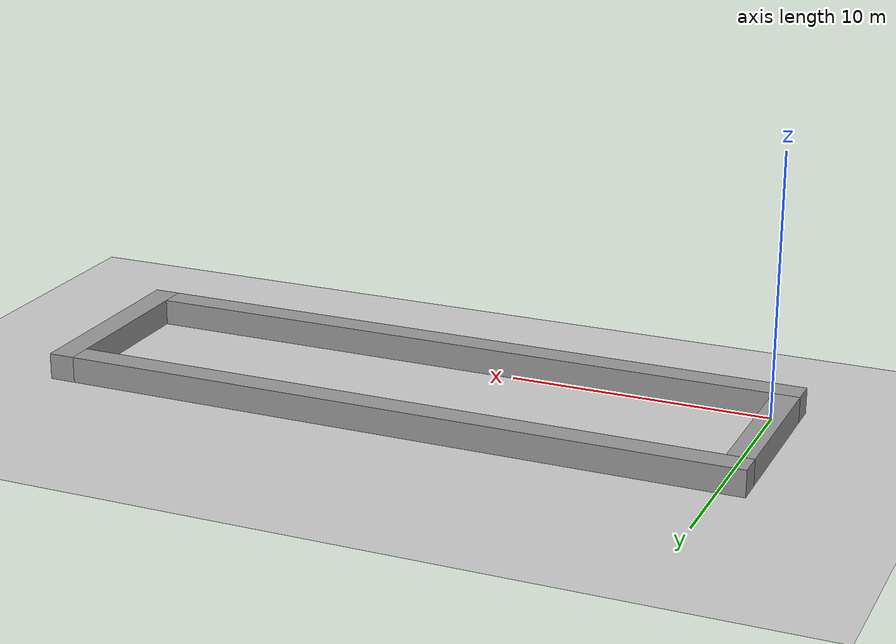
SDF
<sdf version="1.6">
 <world name="default">
  <light name="sun" type="directional">
   <pose>0 0 10 0 -0 0</pose>
   <diffuse>0.8 0.8 0.8 1</diffuse>
   <specular>0.1 0.1 0.1 1</specular>
   <attenuation>
    <range>1000</range>
    <constant>0.9</constant>
    <linear>0.01</linear>
    <quadratic>0.001</quadratic>
   </attenuation>
   <direction>-0.5 0.5 -1</direction>
  </light>
  <model name="ground_plane">
   <static>1</static>
   <link name="link">
    <collision name="collision">
     <geometry><plane><normal>0 0 1</normal><size>100 100</size></plane></geometry>
     <surface><friction><ode><mu>100</mu><mu2>50</mu2></ode></friction></surface>
    </collision>
    <visual name="visual">
     <cast_shadows>0</cast_shadows>
     <geometry><plane><normal>0 0 1</normal><size>100 100</size></plane></geometry>
     <material>
      <script><uri>file://media/materials/scripts/gazebo.material</uri><name>Gazebo/Grey</name></script>
     </material>
    </visual>
   </link>
  </model>
  <gravity>0 0 -9.8</gravity>
  <magnetic_field>6e-06 2.3e-05 -4.2e-05</magnetic_field>
  <atmosphere type="adiabatic"/>
  <physics name="default_physics" default="0" type="ode">
   <max_step_size>0.001</max_step_size>
   <real_time_factor>1</real_time_factor>
   <real_time_update_rate>1000</real_time_update_rate>
  </physics>
  <scene><ambient>0.4 0.4 0.4 1</ambient><background>0.7 0.7 0.7 1</background><shadows>1</shadows></scene>
  <spherical_coordinates>
   <surface_model>EARTH_WGS84</surface_model>
   <latitude_deg>0</latitude_deg>
   <longitude_deg>0</longitude_deg>
   <elevation>0</elevation>
   <heading_deg>0</heading_deg>
  </spherical_coordinates>
  <model name="box_lower">
   <pose>12 -0.5 0.5 0 -0 0</pose>
   <link name="link">
    <inertial>
     <mass>26</mass>
     <inertia><ixx>4.34</ixx><ixy>0</ixy><ixz>0</ixz><iyy>100</iyy><iyz>0</iyz><izz>4.34</izz></inertia>
    </inertial>
    <collision name="collision"><geometry><box><size>26 1 1</size></box></geometry></collision>
    <visual name="visual">
     <geometry><box><size>26 1 1</size></box></geometry>
     <material>
      <script><name>Gazebo/Grey</name><uri>file://media/materials/scripts/gazebo.material</uri></script>
     </material>
    </visual>
   </link>
  </model>
  <model name="box_upper">
   <pose>12 6.5 0.5 0 -0 0</pose>
   <link name="link">
    <inertial>
     <mass>26</mass>
     <inertia><ixx>4.34</ixx><ixy>0</ixy><ixz>0</ixz><iyy>100</iyy><iyz>0</iyz><izz>4.34</izz></inertia>
    </inertial>
    <collision name="collision"><geometry><box><size>26 1 1</size></box></geometry></collision>
    <visual name="visual">
     <geometry><box><size>26 1 1</size></box></geometry>
     <material>
      <script><name>Gazebo/Grey</name><uri>file://media/materials/scripts/gazebo.material</uri></script>
     </material>
    </visual>
   </link>
  </model>
  <model name="box_left">
   <pose>-0.5 3 0.5 0 -0 0</pose>
   <link name="link">
    <inertial>
     <mass>6</mass>
     <inertia><ixx>10.0</ixx><ixy>0</ixy><ixz>0</ixz><iyy>1.0</iyy><iyz>0</iyz><izz>1.0</izz></inertia>
    </inertial>
    <collision name="collision"><geometry><box><size>1 5.99 1</size></box></geometry></collision>
    <visual name="visual">
     <geometry><box><size>1 6 1</size></box></geometry>
     <material>
      <script><name>Gazebo/Grey</name><uri>file://media/materials/scripts/gazebo.material</uri></script>
     </material>
    </visual>
   </link>
  </model>
  <model name="box_right">
   <pose>25.5 3 0.5 0 -0 0</pose>
   <link name="link">
    <inertial>
     <mass>8</mass>
     <inertia><ixx>13.36</ixx><ixy>0</ixy><ixz>0</ixz><iyy>1.336</iyy><iyz>0</iyz><izz>1.336</izz></inertia>
    </inertial>
    <collision name="collision"><geometry><box><size>0.99 8 1</size></box></geometry></collision>
    <visual name="visual">
     <geometry><box><size>1 8 1</size></box></geometry>
     <material>
      <script><name>Gazebo/Grey</name><uri>file://media/materials/scripts/gazebo.material</uri></script>
     </material>
    </visual>
   </link>
  </model>
 </world>
</sdf>
